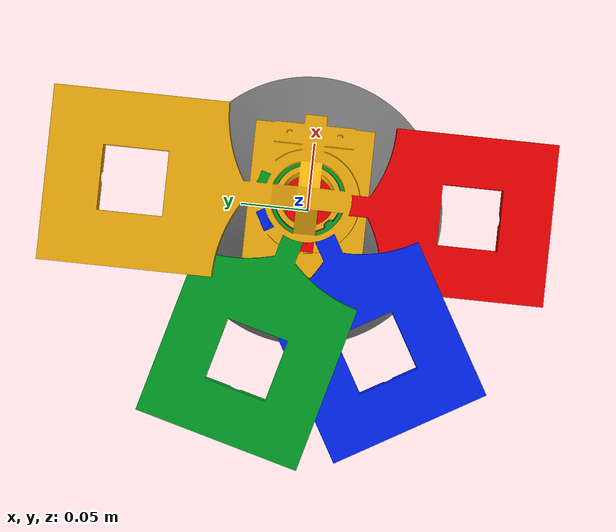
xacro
<?xml version="1.0"?>
<robot name="solar_flower" xmlns:xacro="http://www.ros.org/wiki/xacro">
<!-- Simple inertial macro for Gazebo spawning -->
<xacro:macro name="simple_inertial" params="mass ixx iyy izz">
  <inertial>
    <origin xyz="0 0 0" rpy="0 0 0"/>
    <mass value="${mass}"/>
    <inertia
      ixx="${ixx}" ixy="0.0" ixz="0.0"
      iyy="${iyy}" iyz="0.0"
      izz="${izz}"/>
  </inertial>
</xacro:macro>

<!-- Mesh scale: Fusion STL exported in mm, ROS uses meters -->
  <xacro:property name="mesh_scale" value="0.001 0.001 0.001"/>
  <link name="base_footprint">
   <xacro:simple_inertial mass="0.001" ixx="0.000001" iyy="0.000001" izz="0.000001"/>
  </link>
<joint name="base_footprint_to_base_link" type="fixed">
  <parent link="base_footprint"/>
  <child link="base_link"/>
  <origin xyz="0 0 0" rpy="1.5708 0 0"/>
</joint>

  <!-- Base link -->
  <link name="base_link">
   <xacro:simple_inertial mass="0.25" ixx="0.0001" iyy="0.0001" izz="0.0001"/>
   <visual>
    <origin xyz="0 0 0" rpy="0 0 0"/>
    <geometry>
      <mesh filename="package://solar_flower_description/meshes/base_link.stl" scale="0.001 0.001 0.001"/>
    </geometry>

    <material name="grey">
     <color rgba="0.45 0.45 0.45 1"/>
    </material>
   </visual>
 </link>

  <!-- Azimuth link -->
  <link name="azimuth_link">
   <xacro:simple_inertial mass="0.15" ixx="0.00008" iyy="0.00008" izz="0.00008"/>

   <visual>
      <geometry>
        <mesh filename="package://solar_flower_description/meshes/azimuth_link.stl" scale="${mesh_scale}"/>
      </geometry>
      <material name="dark_grey">
       <color rgba="0.12 0.12 0.12 1"/>
      </material>
    </visual>
  </link>

  <!-- Tilt link -->
  <link name="tilt_link">
   <xacro:simple_inertial mass="0.20" ixx="0.0001" iyy="0.0001" izz="0.0001"/>
   <visual>
    <origin xyz="-0.0325 -0.17535 0" rpy="0 0 0"/>
    <geometry>
      <mesh filename="package://solar_flower_description/meshes/tilt_link.stl" scale="0.001 0.001 0.001"/>
    </geometry>
    <material name="yellow">
     <color rgba="1.0 0.72 0.05 1"/>
    </material>
   </visual>
  </link>

  <!-- Red petal -->
  <link name="red_petal_link">
   <xacro:simple_inertial mass="0.05" ixx="0.00002" iyy="0.00002" izz="0.00002"/>
   <visual>
    <origin xyz="0 -0.2243 0" rpy="0 0 0"/>
    <geometry>
      <mesh filename="package://solar_flower_description/meshes/red_petal_link.stl" scale="0.001 0.001 0.001"/>
    </geometry>
    <material name="red">
     <color rgba="1.0 0.0 0.0 1"/>
    </material>
   </visual>
  </link>

  <!-- Blue petal -->
  <link name="blue_petal_link">
   <xacro:simple_inertial mass="0.05" ixx="0.00002" iyy="0.00002" izz="0.00002"/>
   <visual>
    <origin xyz="0 -0.2353 0" rpy="0 0 0"/>
    <geometry>
      <mesh filename="package://solar_flower_description/meshes/blue_petal_link.stl" scale="0.001 0.001 0.001"/>
    </geometry>
    <material name="blue">
     <color rgba="0.0 0.15 1.0 1"/>
    </material>
   </visual>
  </link>

  <!-- Green petal -->
  <link name="green_petal_link">
   <xacro:simple_inertial mass="0.05" ixx="0.00002" iyy="0.00002" izz="0.00002"/>
   <visual>
    <origin xyz="0 -0.2463 0" rpy="0 0 0"/>
    <geometry>
      <mesh filename="package://solar_flower_description/meshes/green_petal_link.stl" scale="0.001 0.001 0.001"/>
    </geometry>
    <material name="green">
     <color rgba="0.0 0.65 0.15 1"/>
    </material>
   </visual>
  </link>

  <!-- Temporary fixed joints only for mesh alignment check -->
  <joint name="azimuth_joint" type="revolute">
   <parent link="base_link"/>
   <child link="azimuth_link"/>
   <origin xyz="0 0 0" rpy="0 0 0"/>
   <axis xyz="0 1 0"/>
   <limit lower="-2.8" upper="2.8" effort="10" velocity="1.0"/>
  </joint>

 <joint name="tilt_joint" type="revolute">
  <parent link="azimuth_link"/>
  <child link="tilt_link"/>
  <origin xyz="0.0325 0.17535 0" rpy="0 0 0"/>
  <axis xyz="1 0 0"/>
  <limit lower="-0.524" upper="0.524" effort="10" velocity="1.0"/>
 </joint>

 <joint name="red_petal_joint" type="revolute">
  <parent link="tilt_link"/>
  <child link="red_petal_link"/>
  <origin xyz="-0.0325 0.04895 0" rpy="0 0 0"/>
  <axis xyz="0 1 0"/>
  <limit lower="-3.142" upper="0" effort="5" velocity="1.0"/>
 </joint>

 <joint name="blue_petal_joint" type="revolute">
  <parent link="tilt_link"/>
  <child link="blue_petal_link"/>
  <origin xyz="-0.0325 0.05995 0" rpy="0 0 0"/>
  <axis xyz="0 1 0"/>
  <limit lower="-2.094" upper="0" effort="5" velocity="1.0"/>
 </joint>

 <joint name="green_petal_joint" type="revolute">
  <parent link="tilt_link"/>
  <child link="green_petal_link"/>
  <origin xyz="-0.0325 0.07095 0" rpy="0 0 0"/>
  <axis xyz="0 1 0"/>
  <limit lower="-1.309" upper="0" effort="5" velocity="1.0"/>
 </joint>

  <!-- Gazebo joint position controllers -->
  <gazebo>
    <plugin filename="gz-sim-joint-position-controller-system"
            name="gz::sim::systems::JointPositionController">
      <joint_name>azimuth_joint</joint_name>
      <joint_index>0</joint_index>
      <p_gain>5.0</p_gain>
      <i_gain>0.0</i_gain>
      <d_gain>0.2</d_gain>
      <cmd_max>5.0</cmd_max>
      <cmd_min>-5.0</cmd_min>
      <topic>/azimuth_cmd_pos</topic>
    </plugin>
  </gazebo>

  <gazebo>
    <plugin filename="gz-sim-joint-position-controller-system"
            name="gz::sim::systems::JointPositionController">
      <joint_name>tilt_joint</joint_name>
      <joint_index>0</joint_index>
      <p_gain>5.0</p_gain>
      <i_gain>0.0</i_gain>
      <d_gain>0.2</d_gain>
      <cmd_max>5.0</cmd_max>
      <cmd_min>-5.0</cmd_min>
      <topic>/tilt_cmd_pos</topic>
    </plugin>
  </gazebo>

  <gazebo>
    <plugin filename="gz-sim-joint-position-controller-system"
            name="gz::sim::systems::JointPositionController">
      <joint_name>red_petal_joint</joint_name>
      <joint_index>0</joint_index>
      <p_gain>5.0</p_gain>
      <i_gain>0.0</i_gain>
      <d_gain>0.2</d_gain>
      <cmd_max>5.0</cmd_max>
      <cmd_min>-5.0</cmd_min>
      <topic>/red_petal_cmd_pos</topic>
    </plugin>
  </gazebo>

  <gazebo>
    <plugin filename="gz-sim-joint-position-controller-system"
            name="gz::sim::systems::JointPositionController">
      <joint_name>blue_petal_joint</joint_name>
      <joint_index>0</joint_index>
      <p_gain>5.0</p_gain>
      <i_gain>0.0</i_gain>
      <d_gain>0.2</d_gain>
      <cmd_max>5.0</cmd_max>
      <cmd_min>-5.0</cmd_min>
      <topic>/blue_petal_cmd_pos</topic>
    </plugin>
  </gazebo>

  <gazebo>
    <plugin filename="gz-sim-joint-position-controller-system"
            name="gz::sim::systems::JointPositionController">
      <joint_name>green_petal_joint</joint_name>
      <joint_index>0</joint_index>
      <p_gain>5.0</p_gain>
      <i_gain>0.0</i_gain>
      <d_gain>0.2</d_gain>
      <cmd_max>5.0</cmd_max>
      <cmd_min>-5.0</cmd_min>
      <topic>/green_petal_cmd_pos</topic>
    </plugin>
  </gazebo>

</robot>
